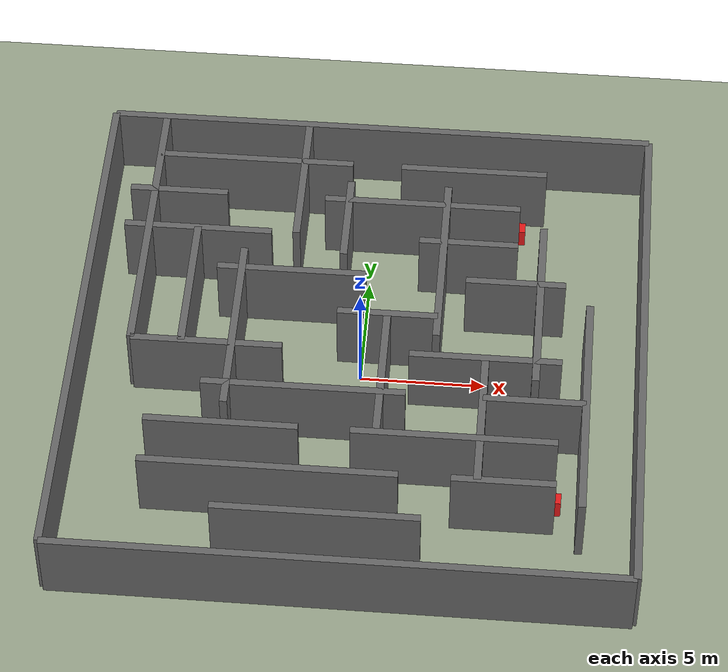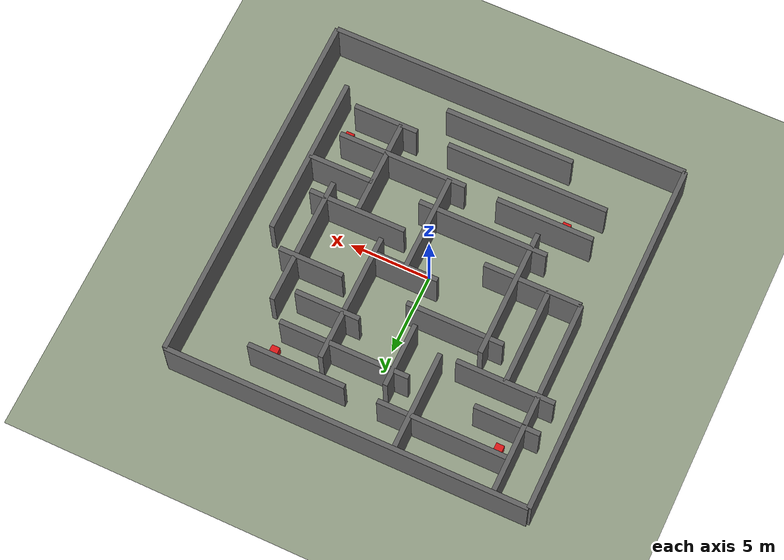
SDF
<?xml version="1.0" ?>
<sdf version="1.8">
  <world name="maze">

    <!-- Earth reference frame for GPS/NavSat and Magnetometer sensors -->
    <spherical_coordinates>
      <surface_model>EARTH_WGS84</surface_model>
      <latitude_deg>51.5074</latitude_deg>
      <longitude_deg>-0.1278</longitude_deg>
      <elevation>0</elevation>
      <heading_deg>0</heading_deg>
    </spherical_coordinates>

    <plugin filename="gz-sim-physics-system"           name="gz::sim::systems::Physics"/>
    <plugin filename="gz-sim-user-commands-system"     name="gz::sim::systems::UserCommands"/>
    <plugin filename="gz-sim-scene-broadcaster-system" name="gz::sim::systems::SceneBroadcaster"/>
    <plugin filename="gz-sim-sensors-system"           name="gz::sim::systems::Sensors">
      <render_engine>ogre2</render_engine>
    </plugin>
    <plugin filename="gz-sim-imu-system"               name="gz::sim::systems::Imu"/>
    <plugin filename="gz-sim-navsat-system"           name="gz::sim::systems::NavSat"/>
    <plugin filename="gz-sim-magnetometer-system"     name="gz::sim::systems::Magnetometer"/>

    <light type="directional" name="sun">
      <cast_shadows>true</cast_shadows><pose>0 0 20 0 0 0</pose>
      <diffuse>1 1 0.95 1</diffuse><specular>0.3 0.3 0.3 1</specular>
      <attenuation><range>1000</range><constant>0.9</constant><linear>0.01</linear><quadratic>0.001</quadratic></attenuation>
      <direction>-0.5 0.1 -0.9</direction>
    </light>

    <model name="ground_plane"><static>true</static>
      <link name="link">
        <collision name="col"><geometry><plane><normal>0 0 1</normal><size>100 100</size></plane></geometry></collision>
        <visual name="vis">
          <geometry><plane><normal>0 0 1</normal><size>100 100</size></plane></geometry>
          <material><ambient>0.6 0.65 0.55 1</ambient><diffuse>0.6 0.65 0.55 1</diffuse></material>
        </visual>
      </link>
    </model>

    <!-- ── OUTER BOUNDARY ──────────────────────────────────────────────── -->
    <model name="outer_north"><static>true</static><pose>0 11.15 1.5 0 0 0</pose>
      <link name="l"><collision name="c"><geometry><box><size>22.3 0.3 3</size></box></geometry><surface><friction><ode><mu>0.05</mu><mu2>0.05</mu2></ode></friction></surface></collision>
      <visual name="v"><geometry><box><size>22.3 0.3 3</size></box></geometry><material><ambient>0.4 0.4 0.4 1</ambient><diffuse>0.4 0.4 0.4 1</diffuse></material></visual></link></model>
    <model name="outer_south"><static>true</static><pose>0 -11.15 1.5 0 0 0</pose>
      <link name="l"><collision name="c"><geometry><box><size>22.3 0.3 3</size></box></geometry><surface><friction><ode><mu>0.05</mu><mu2>0.05</mu2></ode></friction></surface></collision>
      <visual name="v"><geometry><box><size>22.3 0.3 3</size></box></geometry><material><ambient>0.4 0.4 0.4 1</ambient><diffuse>0.4 0.4 0.4 1</diffuse></material></visual></link></model>
    <model name="outer_east"><static>true</static><pose>11.15 0 1.5 0 0 0</pose>
      <link name="l"><collision name="c"><geometry><box><size>0.3 22.3 3</size></box></geometry><surface><friction><ode><mu>0.05</mu><mu2>0.05</mu2></ode></friction></surface></collision>
      <visual name="v"><geometry><box><size>0.3 22.3 3</size></box></geometry><material><ambient>0.4 0.4 0.4 1</ambient><diffuse>0.4 0.4 0.4 1</diffuse></material></visual></link></model>
    <model name="outer_west"><static>true</static><pose>-11.15 0 1.5 0 0 0</pose>
      <link name="l"><collision name="c"><geometry><box><size>0.3 22.3 3</size></box></geometry><surface><friction><ode><mu>0.05</mu><mu2>0.05</mu2></ode></friction></surface></collision>
      <visual name="v"><geometry><box><size>0.3 22.3 3</size></box></geometry><material><ambient>0.4 0.4 0.4 1</ambient><diffuse>0.4 0.4 0.4 1</diffuse></material></visual></link></model>

    <!-- ── INTERNAL MAZE WALLS ─────────────────────────────────────────── -->
    <!-- Horizontal walls (along x-axis) -->
    <model name="hw1"><static>true</static><pose>-5 9 1.5 0 0 0</pose>
      <link name="l"><collision name="c"><geometry><box><size>8 0.3 3</size></box></geometry><surface><friction><ode><mu>0.05</mu><mu2>0.05</mu2></ode></friction></surface></collision>
      <visual name="v"><geometry><box><size>8 0.3 3</size></box></geometry><material><ambient>0.4 0.4 0.4 1</ambient><diffuse>0.4 0.4 0.4 1</diffuse></material></visual></link></model>
    <model name="hw2"><static>true</static><pose>4 9 1.5 0 0 0</pose>
      <link name="l"><collision name="c"><geometry><box><size>6 0.3 3</size></box></geometry><surface><friction><ode><mu>0.05</mu><mu2>0.05</mu2></ode></friction></surface></collision>
      <visual name="v"><geometry><box><size>6 0.3 3</size></box></geometry><material><ambient>0.4 0.4 0.4 1</ambient><diffuse>0.4 0.4 0.4 1</diffuse></material></visual></link></model>
    <model name="hw3"><static>true</static><pose>-8 7 1.5 0 0 0</pose>
      <link name="l"><collision name="c"><geometry><box><size>4 0.3 3</size></box></geometry><surface><friction><ode><mu>0.05</mu><mu2>0.05</mu2></ode></friction></surface></collision>
      <visual name="v"><geometry><box><size>4 0.3 3</size></box></geometry><material><ambient>0.4 0.4 0.4 1</ambient><diffuse>0.4 0.4 0.4 1</diffuse></material></visual></link></model>
    <model name="hw4"><static>true</static><pose>2 7 1.5 0 0 0</pose>
      <link name="l"><collision name="c"><geometry><box><size>8 0.3 3</size></box></geometry><surface><friction><ode><mu>0.05</mu><mu2>0.05</mu2></ode></friction></surface></collision>
      <visual name="v"><geometry><box><size>8 0.3 3</size></box></geometry><material><ambient>0.4 0.4 0.4 1</ambient><diffuse>0.4 0.4 0.4 1</diffuse></material></visual></link></model>
    <model name="hw5"><static>true</static><pose>-7 5 1.5 0 0 0</pose>
      <link name="l"><collision name="c"><geometry><box><size>6 0.3 3</size></box></geometry><surface><friction><ode><mu>0.05</mu><mu2>0.05</mu2></ode></friction></surface></collision>
      <visual name="v"><geometry><box><size>6 0.3 3</size></box></geometry><material><ambient>0.4 0.4 0.4 1</ambient><diffuse>0.4 0.4 0.4 1</diffuse></material></visual></link></model>
    <model name="hw6"><static>true</static><pose>4 5 1.5 0 0 0</pose>
      <link name="l"><collision name="c"><geometry><box><size>4 0.3 3</size></box></geometry><surface><friction><ode><mu>0.05</mu><mu2>0.05</mu2></ode></friction></surface></collision>
      <visual name="v"><geometry><box><size>4 0.3 3</size></box></geometry><material><ambient>0.4 0.4 0.4 1</ambient><diffuse>0.4 0.4 0.4 1</diffuse></material></visual></link></model>
    <model name="hw7"><static>true</static><pose>-3 3 1.5 0 0 0</pose>
      <link name="l"><collision name="c"><geometry><box><size>6 0.3 3</size></box></geometry><surface><friction><ode><mu>0.05</mu><mu2>0.05</mu2></ode></friction></surface></collision>
      <visual name="v"><geometry><box><size>6 0.3 3</size></box></geometry><material><ambient>0.4 0.4 0.4 1</ambient><diffuse>0.4 0.4 0.4 1</diffuse></material></visual></link></model>
    <model name="hw8"><static>true</static><pose>6 3 1.5 0 0 0</pose>
      <link name="l"><collision name="c"><geometry><box><size>4 0.3 3</size></box></geometry><surface><friction><ode><mu>0.05</mu><mu2>0.05</mu2></ode></friction></surface></collision>
      <visual name="v"><geometry><box><size>4 0.3 3</size></box></geometry><material><ambient>0.4 0.4 0.4 1</ambient><diffuse>0.4 0.4 0.4 1</diffuse></material></visual></link></model>
    <model name="hw9"><static>true</static><pose>1 1 1.5 0 0 0</pose>
      <link name="l"><collision name="c"><geometry><box><size>4 0.3 3</size></box></geometry><surface><friction><ode><mu>0.05</mu><mu2>0.05</mu2></ode></friction></surface></collision>
      <visual name="v"><geometry><box><size>4 0.3 3</size></box></geometry><material><ambient>0.4 0.4 0.4 1</ambient><diffuse>0.4 0.4 0.4 1</diffuse></material></visual></link></model>
    <model name="hw10"><static>true</static><pose>-6 -1 1.5 0 0 0</pose>
      <link name="l"><collision name="c"><geometry><box><size>6 0.3 3</size></box></geometry><surface><friction><ode><mu>0.05</mu><mu2>0.05</mu2></ode></friction></surface></collision>
      <visual name="v"><geometry><box><size>6 0.3 3</size></box></geometry><material><ambient>0.4 0.4 0.4 1</ambient><diffuse>0.4 0.4 0.4 1</diffuse></material></visual></link></model>
    <model name="hw11"><static>true</static><pose>5 -1 1.5 0 0 0</pose>
      <link name="l"><collision name="c"><geometry><box><size>6 0.3 3</size></box></geometry><surface><friction><ode><mu>0.05</mu><mu2>0.05</mu2></ode></friction></surface></collision>
      <visual name="v"><geometry><box><size>6 0.3 3</size></box></geometry><material><ambient>0.4 0.4 0.4 1</ambient><diffuse>0.4 0.4 0.4 1</diffuse></material></visual></link></model>
    <model name="hw12"><static>true</static><pose>-2 -3 1.5 0 0 0</pose>
      <link name="l"><collision name="c"><geometry><box><size>8 0.3 3</size></box></geometry><surface><friction><ode><mu>0.05</mu><mu2>0.05</mu2></ode></friction></surface></collision>
      <visual name="v"><geometry><box><size>8 0.3 3</size></box></geometry><material><ambient>0.4 0.4 0.4 1</ambient><diffuse>0.4 0.4 0.4 1</diffuse></material></visual></link></model>
    <model name="hw13"><static>true</static><pose>7 -3 1.5 0 0 0</pose>
      <link name="l"><collision name="c"><geometry><box><size>4 0.3 3</size></box></geometry><surface><friction><ode><mu>0.05</mu><mu2>0.05</mu2></ode></friction></surface></collision>
      <visual name="v"><geometry><box><size>4 0.3 3</size></box></geometry><material><ambient>0.4 0.4 0.4 1</ambient><diffuse>0.4 0.4 0.4 1</diffuse></material></visual></link></model>
    <model name="hw14"><static>true</static><pose>-5 -5 1.5 0 0 0</pose>
      <link name="l"><collision name="c"><geometry><box><size>6 0.3 3</size></box></geometry><surface><friction><ode><mu>0.05</mu><mu2>0.05</mu2></ode></friction></surface></collision>
      <visual name="v"><geometry><box><size>6 0.3 3</size></box></geometry><material><ambient>0.4 0.4 0.4 1</ambient><diffuse>0.4 0.4 0.4 1</diffuse></material></visual></link></model>
    <model name="hw15"><static>true</static><pose>4 -5 1.5 0 0 0</pose>
      <link name="l"><collision name="c"><geometry><box><size>8 0.3 3</size></box></geometry><surface><friction><ode><mu>0.05</mu><mu2>0.05</mu2></ode></friction></surface></collision>
      <visual name="v"><geometry><box><size>8 0.3 3</size></box></geometry><material><ambient>0.4 0.4 0.4 1</ambient><diffuse>0.4 0.4 0.4 1</diffuse></material></visual></link></model>
    <model name="hw16"><static>true</static><pose>-3 -7 1.5 0 0 0</pose>
      <link name="l"><collision name="c"><geometry><box><size>10 0.3 3</size></box></geometry><surface><friction><ode><mu>0.05</mu><mu2>0.05</mu2></ode></friction></surface></collision>
      <visual name="v"><geometry><box><size>10 0.3 3</size></box></geometry><material><ambient>0.4 0.4 0.4 1</ambient><diffuse>0.4 0.4 0.4 1</diffuse></material></visual></link></model>
    <model name="hw17"><static>true</static><pose>6 -7 1.5 0 0 0</pose>
      <link name="l"><collision name="c"><geometry><box><size>4 0.3 3</size></box></geometry><surface><friction><ode><mu>0.05</mu><mu2>0.05</mu2></ode></friction></surface></collision>
      <visual name="v"><geometry><box><size>4 0.3 3</size></box></geometry><material><ambient>0.4 0.4 0.4 1</ambient><diffuse>0.4 0.4 0.4 1</diffuse></material></visual></link></model>
    <model name="hw18"><static>true</static><pose>-1 -9 1.5 0 0 0</pose>
      <link name="l"><collision name="c"><geometry><box><size>8 0.3 3</size></box></geometry><surface><friction><ode><mu>0.05</mu><mu2>0.05</mu2></ode></friction></surface></collision>
      <visual name="v"><geometry><box><size>8 0.3 3</size></box></geometry><material><ambient>0.4 0.4 0.4 1</ambient><diffuse>0.4 0.4 0.4 1</diffuse></material></visual></link></model>

    <!-- Vertical walls (along y-axis) -->
    <model name="vw1"><static>true</static><pose>-9 5 1.5 0 0 0</pose>
      <link name="l"><collision name="c"><geometry><box><size>0.3 12 3</size></box></geometry><surface><friction><ode><mu>0.05</mu><mu2>0.05</mu2></ode></friction></surface></collision>
      <visual name="v"><geometry><box><size>0.3 12 3</size></box></geometry><material><ambient>0.4 0.4 0.4 1</ambient><diffuse>0.4 0.4 0.4 1</diffuse></material></visual></link></model>
    <model name="vw2"><static>true</static><pose>-7 2 1.5 0 0 0</pose>
      <link name="l"><collision name="c"><geometry><box><size>0.3 6 3</size></box></geometry><surface><friction><ode><mu>0.05</mu><mu2>0.05</mu2></ode></friction></surface></collision>
      <visual name="v"><geometry><box><size>0.3 6 3</size></box></geometry><material><ambient>0.4 0.4 0.4 1</ambient><diffuse>0.4 0.4 0.4 1</diffuse></material></visual></link></model>
    <model name="vw3"><static>true</static><pose>-5 0 1.5 0 0 0</pose>
      <link name="l"><collision name="c"><geometry><box><size>0.3 8 3</size></box></geometry><surface><friction><ode><mu>0.05</mu><mu2>0.05</mu2></ode></friction></surface></collision>
      <visual name="v"><geometry><box><size>0.3 8 3</size></box></geometry><material><ambient>0.4 0.4 0.4 1</ambient><diffuse>0.4 0.4 0.4 1</diffuse></material></visual></link></model>
    <model name="vw4"><static>true</static><pose>-3 8 1.5 0 0 0</pose>
      <link name="l"><collision name="c"><geometry><box><size>0.3 6 3</size></box></geometry><surface><friction><ode><mu>0.05</mu><mu2>0.05</mu2></ode></friction></surface></collision>
      <visual name="v"><geometry><box><size>0.3 6 3</size></box></geometry><material><ambient>0.4 0.4 0.4 1</ambient><diffuse>0.4 0.4 0.4 1</diffuse></material></visual></link></model>
    <model name="vw5"><static>true</static><pose>-1 6 1.5 0 0 0</pose>
      <link name="l"><collision name="c"><geometry><box><size>0.3 4 3</size></box></geometry><surface><friction><ode><mu>0.05</mu><mu2>0.05</mu2></ode></friction></surface></collision>
      <visual name="v"><geometry><box><size>0.3 4 3</size></box></geometry><material><ambient>0.4 0.4 0.4 1</ambient><diffuse>0.4 0.4 0.4 1</diffuse></material></visual></link></model>
    <model name="vw6"><static>true</static><pose>1 -2 1.5 0 0 0</pose>
      <link name="l"><collision name="c"><geometry><box><size>0.3 6 3</size></box></geometry><surface><friction><ode><mu>0.05</mu><mu2>0.05</mu2></ode></friction></surface></collision>
      <visual name="v"><geometry><box><size>0.3 6 3</size></box></geometry><material><ambient>0.4 0.4 0.4 1</ambient><diffuse>0.4 0.4 0.4 1</diffuse></material></visual></link></model>
    <model name="vw7"><static>true</static><pose>3 4 1.5 0 0 0</pose>
      <link name="l"><collision name="c"><geometry><box><size>0.3 8 3</size></box></geometry><surface><friction><ode><mu>0.05</mu><mu2>0.05</mu2></ode></friction></surface></collision>
      <visual name="v"><geometry><box><size>0.3 8 3</size></box></geometry><material><ambient>0.4 0.4 0.4 1</ambient><diffuse>0.4 0.4 0.4 1</diffuse></material></visual></link></model>
    <model name="vw8"><static>true</static><pose>5 -4 1.5 0 0 0</pose>
      <link name="l"><collision name="c"><geometry><box><size>0.3 6 3</size></box></geometry><surface><friction><ode><mu>0.05</mu><mu2>0.05</mu2></ode></friction></surface></collision>
      <visual name="v"><geometry><box><size>0.3 6 3</size></box></geometry><material><ambient>0.4 0.4 0.4 1</ambient><diffuse>0.4 0.4 0.4 1</diffuse></material></visual></link></model>
    <model name="vw9"><static>true</static><pose>7 2 1.5 0 0 0</pose>
      <link name="l"><collision name="c"><geometry><box><size>0.3 8 3</size></box></geometry><surface><friction><ode><mu>0.05</mu><mu2>0.05</mu2></ode></friction></surface></collision>
      <visual name="v"><geometry><box><size>0.3 8 3</size></box></geometry><material><ambient>0.4 0.4 0.4 1</ambient><diffuse>0.4 0.4 0.4 1</diffuse></material></visual></link></model>
    <model name="vw10"><static>true</static><pose>9 -3 1.5 0 0 0</pose>
      <link name="l"><collision name="c"><geometry><box><size>0.3 10 3</size></box></geometry><surface><friction><ode><mu>0.05</mu><mu2>0.05</mu2></ode></friction></surface></collision>
      <visual name="v"><geometry><box><size>0.3 10 3</size></box></geometry><material><ambient>0.4 0.4 0.4 1</ambient><diffuse>0.4 0.4 0.4 1</diffuse></material></visual></link></model>

    <model name="maze_bot_1">
      <pose>-8 8 0.4 0 0 0</pose>
      <link name="body">
        <inertial><mass>15</mass><inertia><ixx>0.5</ixx><ixy>0</ixy><ixz>0</ixz><iyy>0.5</iyy><iyz>0</iyz><izz>0.5</izz></inertia></inertial>
        <collision name="col"><geometry><box><size>0.5 0.5 0.8</size></box></geometry><surface><friction><ode><mu>0.05</mu><mu2>0.05</mu2></ode></friction></surface></collision>
        <visual name="vis"><geometry><box><size>0.5 0.5 0.8</size></box></geometry>
          <material><ambient>0.9 0.1 0.1 1</ambient><diffuse>0.9 0.1 0.1 1</diffuse></material></visual>
      </link>
      <plugin filename="gz-sim-trajectory-follower-system" name="gz::sim::systems::TrajectoryFollower">
        <link_name>body</link_name><loop>true</loop><force>20</force><torque>5</torque>
        <waypoints><waypoint>-8 6</waypoint><waypoint>-8 10</waypoint></waypoints>
      </plugin>
    </model>

    <model name="maze_bot_2">
      <pose>6 8 0.4 0 0 0</pose>
      <link name="body">
        <inertial><mass>15</mass><inertia><ixx>0.5</ixx><ixy>0</ixy><ixz>0</ixz><iyy>0.5</iyy><iyz>0</iyz><izz>0.5</izz></inertia></inertial>
        <collision name="col"><geometry><box><size>0.5 0.5 0.8</size></box></geometry><surface><friction><ode><mu>0.05</mu><mu2>0.05</mu2></ode></friction></surface></collision>
        <visual name="vis"><geometry><box><size>0.5 0.5 0.8</size></box></geometry>
          <material><ambient>0.9 0.1 0.1 1</ambient><diffuse>0.9 0.1 0.1 1</diffuse></material></visual>
      </link>
      <plugin filename="gz-sim-trajectory-follower-system" name="gz::sim::systems::TrajectoryFollower">
        <link_name>body</link_name><loop>true</loop><force>20</force><torque>5</torque>
        <waypoints><waypoint>4 8</waypoint><waypoint>10 8</waypoint></waypoints>
      </plugin>
    </model>

    <model name="maze_bot_3">
      <pose>-6 -6 0.4 0 0 0</pose>
      <link name="body">
        <inertial><mass>15</mass><inertia><ixx>0.5</ixx><ixy>0</ixy><ixz>0</ixz><iyy>0.5</iyy><iyz>0</iyz><izz>0.5</izz></inertia></inertial>
        <collision name="col"><geometry><box><size>0.5 0.5 0.8</size></box></geometry><surface><friction><ode><mu>0.05</mu><mu2>0.05</mu2></ode></friction></surface></collision>
        <visual name="vis"><geometry><box><size>0.5 0.5 0.8</size></box></geometry>
          <material><ambient>0.9 0.1 0.1 1</ambient><diffuse>0.9 0.1 0.1 1</diffuse></material></visual>
      </link>
      <plugin filename="gz-sim-trajectory-follower-system" name="gz::sim::systems::TrajectoryFollower">
        <link_name>body</link_name><loop>true</loop><force>20</force><torque>5</torque>
        <waypoints><waypoint>-6 -4</waypoint><waypoint>-6 -10</waypoint></waypoints>
      </plugin>
    </model>

    <model name="maze_bot_4">
      <pose>8 -6 0.4 0 0 0</pose>
      <link name="body">
        <inertial><mass>15</mass><inertia><ixx>0.5</ixx><ixy>0</ixy><ixz>0</ixz><iyy>0.5</iyy><iyz>0</iyz><izz>0.5</izz></inertia></inertial>
        <collision name="col"><geometry><box><size>0.5 0.5 0.8</size></box></geometry><surface><friction><ode><mu>0.05</mu><mu2>0.05</mu2></ode></friction></surface></collision>
        <visual name="vis"><geometry><box><size>0.5 0.5 0.8</size></box></geometry>
          <material><ambient>0.9 0.1 0.1 1</ambient><diffuse>0.9 0.1 0.1 1</diffuse></material></visual>
      </link>
      <plugin filename="gz-sim-trajectory-follower-system" name="gz::sim::systems::TrajectoryFollower">
        <link_name>body</link_name><loop>true</loop><force>20</force><torque>5</torque>
        <waypoints><waypoint>6 -6</waypoint><waypoint>10 -6</waypoint></waypoints>
      </plugin>
    </model>

  </world>
</sdf>
